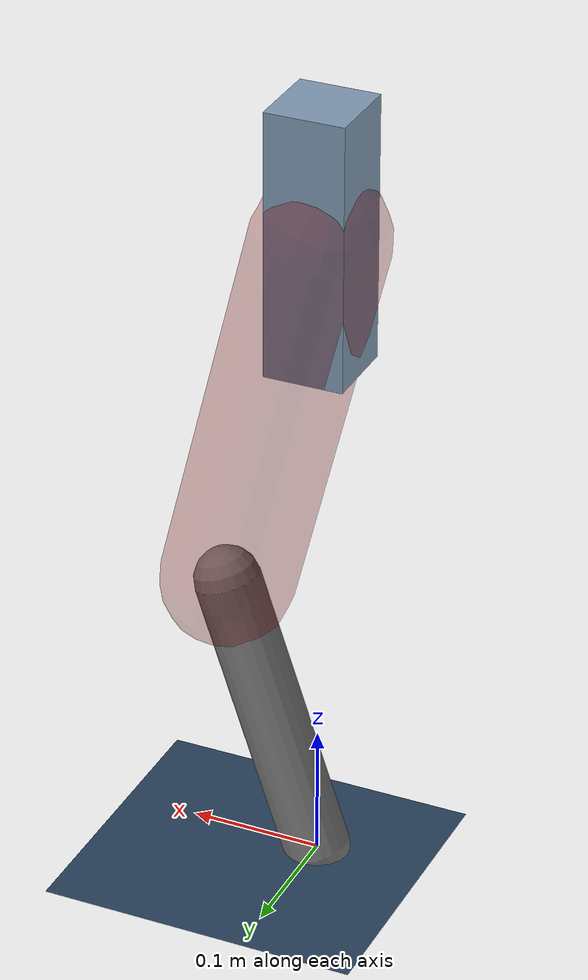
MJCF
<mujoco model="Hopper2D">
	<compiler inertiafromgeom="true" angle="radian" />
	<option timestep="0.001" integrator="implicit" cone="elliptic" solver="Newton" tolerance="1e-10" />

	<default>
		<geom contype="1" conaffinity="1" condim="3" friction="2 0.005 0.0001" solref="0.005 1" />
		<joint limited="true" damping="0.1" />
	</default>

	<asset>
		<texture name="skybox" type="skybox" builtin="gradient" rgb1=".4 .6 .8" rgb2="0 0 0" width="800" height="800" />
		<texture name="grid" type="2d" builtin="checker" rgb1=".1 .2 .3" rgb2=".2 .3 .4" width="300" height="300" mark="edge" markrgb=".2 .3 .4" />
		<material name="ground" texture="grid" texrepeat="1 1" texuniform="true" reflectance="0.1" />
		<material name="leg" rgba="0.5 0.6 0.7 1" />
	</asset>

	<worldbody>

		<geom name="floor" type="plane" size="5 5 0.25" material="ground" />

		<light directional="false" diffuse="0.8 0.8 0.8" specular="0.3 0.3 0.3" pos="0 0 2" dir="0 0 -1" />
		<light mode="targetbodycom" target="base" directional="false" diffuse="0.8 0.8 0.8" specular="0.3 0.3 0.3" pos="0 0 2" dir="0 0 -1" />

		<camera name="fixed" pos="0 -2 1" xyaxes="1 0 0 0 0 1" />
		<camera name="tracking" mode="trackcom" pos="0 -3 1" />

		<body name="root" pos="0 0 0.5055375725870633">
			<joint name="slide_x" type="slide" axis="1 0 0" range="-100 100" />
			<joint name="slide_z" type="slide" axis="0 0 1" range="0 10" />

			<body name="base" pos="0 0 0">
				<geom name="torso" type="box" size="0.03 0.03 0.1" mass="1.913" material="leg" />

				<body name="link1" pos="0 0 0" euler="0 1.3260709551149703 0">
					<joint type="hinge" axis="0 -1 0" pos="0 0 0" name="hinge1" limited="true" range="-3.14 3.14" stiffness="0" damping="0.1" />
					<geom name="thigh" type="capsule" fromto="0 0 0 0.2996184806017228 0 0" size="0.05" rgba="0.5 0 0 0.3" mass="0.9876698976246516" />

					<body name="link2" pos="0.2996184806017228 0 0" euler="0 0.5705714141040978 0">
						<joint type="hinge" axis="0 -1 0" pos="0 0 0" name="hinge2" limited="true" range="-3.14 3.14" stiffness="0" damping="0.1" />
						<geom name="shank" type="capsule" fromto="0 0 0 0.22677964464049555 0 0" size="0.025" mass="0.4233237157123964" />

					</body>
				</body>
			</body>
		</body>
	</worldbody>

	<actuator>
		<motor name="torque1" joint="hinge1" ctrlrange="-15.238386205127467 15.238386205127467" ctrllimited="true" gear="1" />
		<motor name="torque2" joint="hinge2" ctrlrange="-115.16453375933578 115.16453375933578" ctrllimited="true" gear="1" />
	</actuator>
</mujoco>
